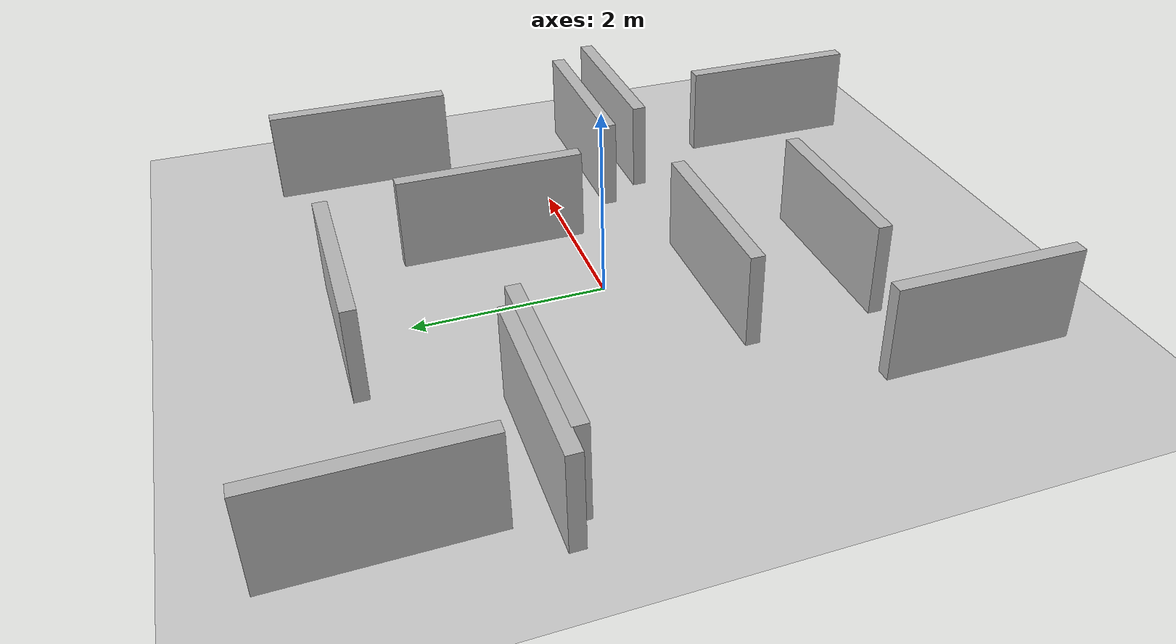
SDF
<sdf version="1.8">
 <world name="default">
  <physics type="ode">
   <real_time_update_rate>1000.0</real_time_update_rate>
   <max_step_size>0.01</max_step_size>
   <real_time_factor>10.0</real_time_factor>
   <ode>
    <solver>
     <type>quick</type>
     <iters>150</iters>
     <precon_iters>0</precon_iters>
     <sor>1.400000</sor>
     <use_dynamic_moi_rescaling>1</use_dynamic_moi_rescaling>
    </solver>
    <constraints>
     <cfm>0.00001</cfm>
     <erp>0.2</erp>
     <contact_max_correcting_vel>2000.000000</contact_max_correcting_vel>
     <contact_surface_layer>0.01000</contact_surface_layer>
    </constraints>
   </ode>
  </physics>
  <plugin filename="gz-sim-physics-system" name="gz::sim::systems::Physics"/>
  <plugin filename="gz-sim-user-commands-system" name="gz::sim::systems::UserCommands"/>
  <plugin filename="gz-sim-scene-broadcaster-system" name="gz::sim::systems::SceneBroadcaster"/>
  <plugin filename="gz-sim-sensors-system" name="gz::sim::systems::Sensors">
   <render_engine>ogre2</render_engine>
  </plugin>
  <plugin filename="gz-sim-imu-system" name="gz::sim::systems::Imu"/>
  <include><uri>https://fuel.gazebosim.org/1.0/OpenRobotics/models/Ground Plane</uri></include>
  <include><uri>https://fuel.gazebosim.org/1.0/OpenRobotics/models/Sun</uri></include>
  <model name="random_wall_0">
   <static>true</static>
   <pose>1.2132461057976034 0.856720624358835 0.5 0 0 0</pose>
   <link name="link">
    <collision name="collision"><geometry><box><size>0.15 2.0 1.0</size></box></geometry></collision>
    <visual name="visual"><geometry><box><size>0.15 2.0 1.0</size></box></geometry></visual>
   </link>
  </model>
  <model name="random_wall_1">
   <static>true</static>
   <pose>-2.045767855747051 1.1980128909944128 0.5 0 0 0</pose>
   <link name="link">
    <collision name="collision"><geometry><box><size>2.0 0.15 1.0</size></box></geometry></collision>
    <visual name="visual"><geometry><box><size>2.0 0.15 1.0</size></box></geometry></visual>
   </link>
  </model>
  <model name="random_wall_3">
   <static>true</static>
   <pose>-2.23790046093424 -2.986527998577648 0.5 0 0 0</pose>
   <link name="link">
    <collision name="collision"><geometry><box><size>0.15 2.0 1.0</size></box></geometry></collision>
    <visual name="visual"><geometry><box><size>0.15 2.0 1.0</size></box></geometry></visual>
   </link>
  </model>
  <model name="random_wall_4">
   <static>true</static>
   <pose>-2.854984542404422 2.7504118372739184 0.5 0 0 0</pose>
   <link name="link">
    <collision name="collision"><geometry><box><size>0.15 2.0 1.0</size></box></geometry></collision>
    <visual name="visual"><geometry><box><size>0.15 2.0 1.0</size></box></geometry></visual>
   </link>
  </model>
  <model name="random_wall_5">
   <static>true</static>
   <pose>2.711769691516345 -3.0952035109492284 0.5 0 0 0</pose>
   <link name="link">
    <collision name="collision"><geometry><box><size>0.15 2.0 1.0</size></box></geometry></collision>
    <visual name="visual"><geometry><box><size>0.15 2.0 1.0</size></box></geometry></visual>
   </link>
  </model>
  <model name="random_wall_6">
   <static>true</static>
   <pose>-0.31275783515310085 -2.4355999135915565 0.5 0 0 0</pose>
   <link name="link">
    <collision name="collision"><geometry><box><size>2.0 0.15 1.0</size></box></geometry></collision>
    <visual name="visual"><geometry><box><size>2.0 0.15 1.0</size></box></geometry></visual>
   </link>
  </model>
  <model name="random_wall_7">
   <static>true</static>
   <pose>2.684519627398589 -0.6470461721583809 0.5 0 0 0</pose>
   <link name="link">
    <collision name="collision"><geometry><box><size>2.0 0.15 1.0</size></box></geometry></collision>
    <visual name="visual"><geometry><box><size>2.0 0.15 1.0</size></box></geometry></visual>
   </link>
  </model>
  <model name="random_wall_8">
   <static>true</static>
   <pose>0.04466367788924641 2.6329901118665324 0.5 0 0 0</pose>
   <link name="link">
    <collision name="collision"><geometry><box><size>2.0 0.15 1.0</size></box></geometry></collision>
    <visual name="visual"><geometry><box><size>2.0 0.15 1.0</size></box></geometry></visual>
   </link>
  </model>
  <model name="random_wall_10">
   <static>true</static>
   <pose>-2.332175116905992 1.3363845153135223 0.5 0 0 0</pose>
   <link name="link">
    <collision name="collision"><geometry><box><size>2.0 0.15 1.0</size></box></geometry></collision>
    <visual name="visual"><geometry><box><size>2.0 0.15 1.0</size></box></geometry></visual>
   </link>
  </model>
  <model name="random_wall_11">
   <static>true</static>
   <pose>-0.38119429585585785 -1.0502065833057967 0.5 0 0 0</pose>
   <link name="link">
    <collision name="collision"><geometry><box><size>2.0 0.15 1.0</size></box></geometry></collision>
    <visual name="visual"><geometry><box><size>2.0 0.15 1.0</size></box></geometry></visual>
   </link>
  </model>
  <model name="random_wall_12">
   <static>true</static>
   <pose>3.204783911003389 1.934702258340498 0.5 0 0 0</pose>
   <link name="link">
    <collision name="collision"><geometry><box><size>0.15 2.0 1.0</size></box></geometry></collision>
    <visual name="visual"><geometry><box><size>0.15 2.0 1.0</size></box></geometry></visual>
   </link>
  </model>
  <model name="random_wall_14">
   <static>true</static>
   <pose>2.997670959806353 -1.1205048663405313 0.5 0 0 0</pose>
   <link name="link">
    <collision name="collision"><geometry><box><size>2.0 0.15 1.0</size></box></geometry></collision>
    <visual name="visual"><geometry><box><size>2.0 0.15 1.0</size></box></geometry></visual>
   </link>
  </model>
 </world>
</sdf>
